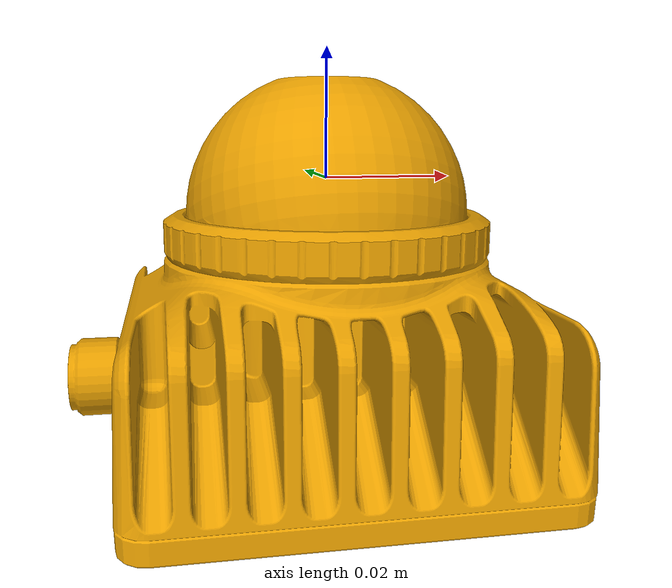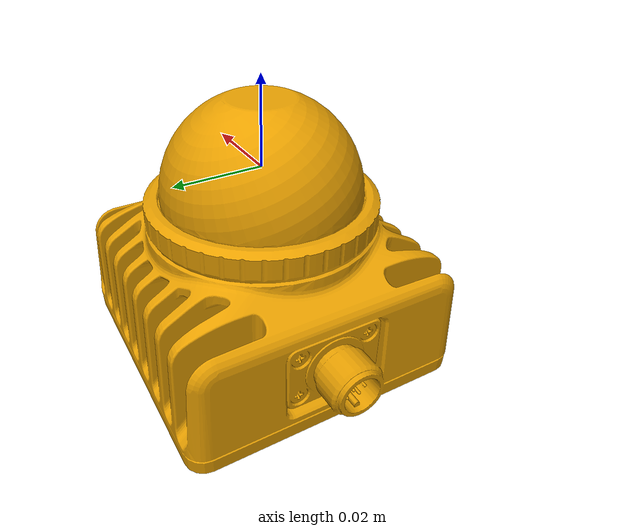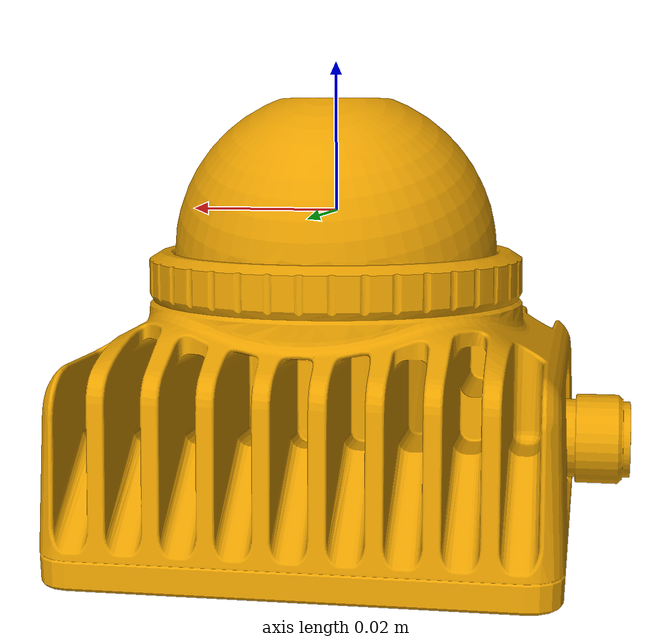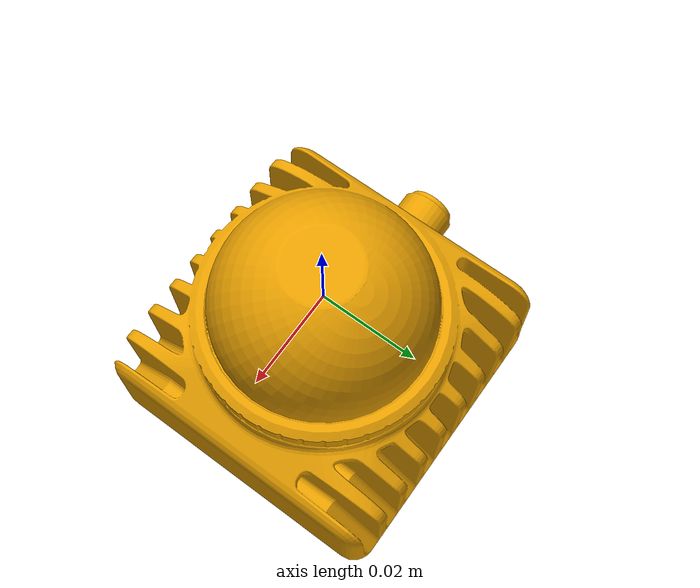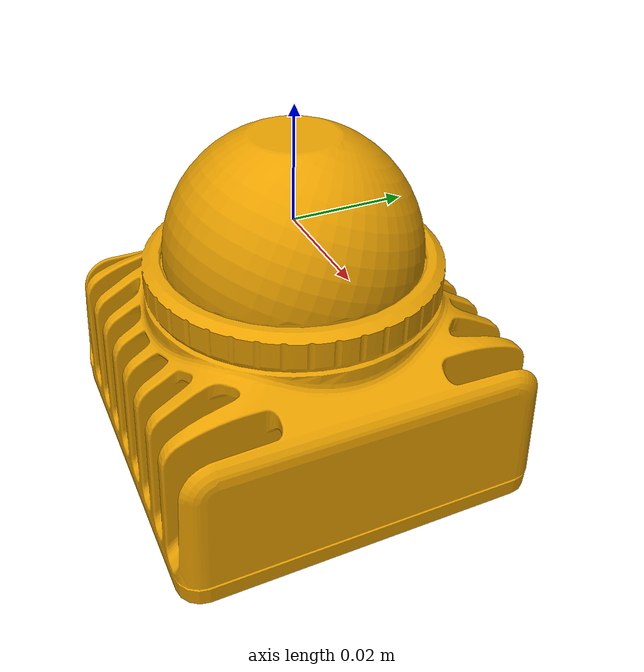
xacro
<?xml version="1.0"?>
<robot name="mid360_driver">
  <link name="livox_frame">
    <visual>
      <origin xyz="0 0 -0.045" rpy="0 0 0"/>
      <geometry>
        <mesh filename="package://mid360_driver/meshes/livox_frame.STL"/>
      </geometry>
    </visual>
    <collision>
      <origin xyz="-0.011 -0.02329 -0.005" rpy="0 0 0"/>
      <geometry>
        <mesh filename="package://mid360_driver/meshes/livox_frame.STL"/>
      </geometry>
    </collision>
  </link>
  <link name="imu_frame">
  </link>
  <joint name="imu2lidar" type="fixed">
    <origin xyz="0.011 0.02329 -0.04412" rpy="0 0 0"/>
    <parent link="livox_frame"/>
    <child link="imu_frame"/>
  </joint>
</robot>
